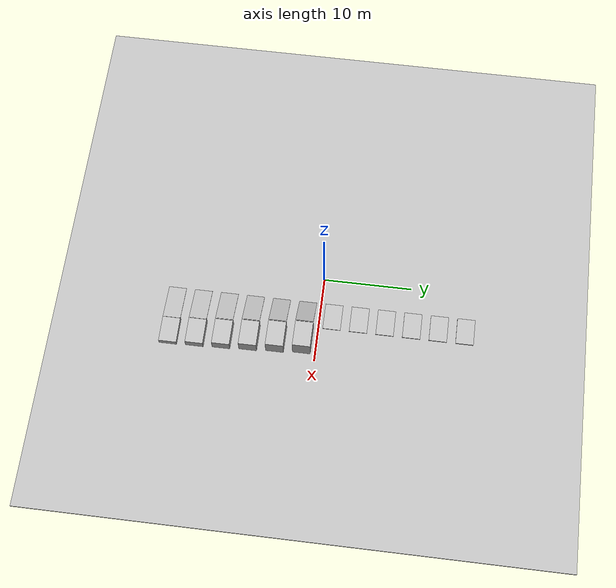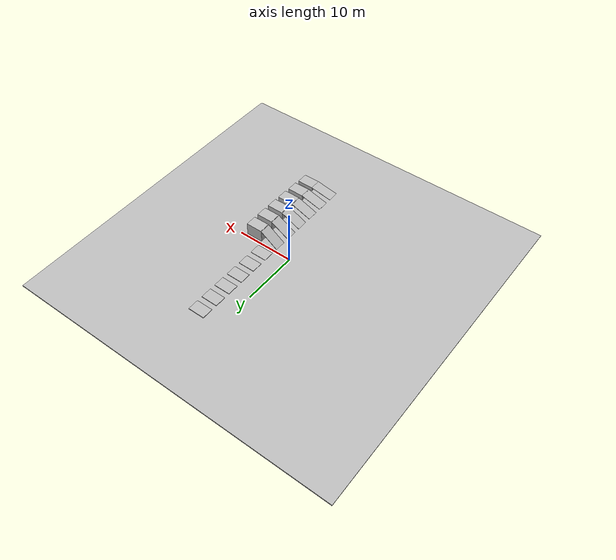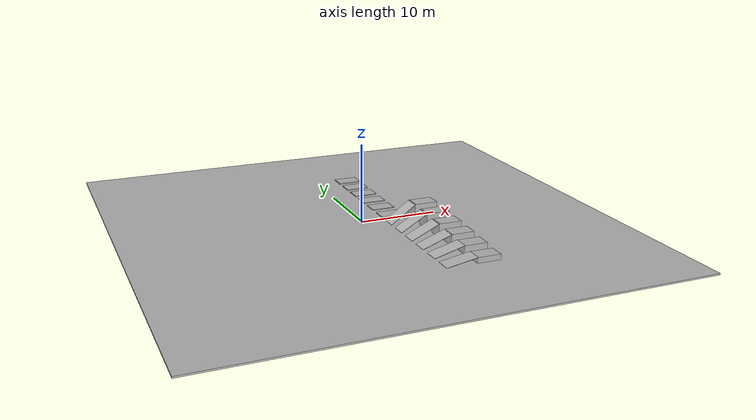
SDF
<?xml version="1.0"?>
<!-- GENERATED by make_limits_world.py (experiment X-A1, docs/work-docs/nav/step11_terrain_classification.md) -->
<sdf version="1.6">
  <world name="ugv_limits">
    <physics name="4ms" type="ignored"><max_step_size>0.004</max_step_size><real_time_factor>1.0</real_time_factor></physics>
    <plugin filename="ignition-gazebo-physics-system" name="gz::sim::systems::Physics"/>
    <plugin filename="ignition-gazebo-scene-broadcaster-system" name="gz::sim::systems::SceneBroadcaster"/>
    <plugin filename="ignition-gazebo-user-commands-system" name="gz::sim::systems::UserCommands"/>
    <plugin filename="ignition-gazebo-sensors-system" name="gz::sim::systems::Sensors"><render_engine>ogre2</render_engine></plugin>
    <scene><ambient>0.6 0.6 0.6 1</ambient><background>0.8 0.85 0.9 1</background></scene>
    <light type="directional" name="sun"><cast_shadows>false</cast_shadows><pose>0 0 10 0 0 0</pose><diffuse>0.9 0.9 0.9 1</diffuse><direction>-0.5 0.3 -1</direction></light>
    <model name="ground"><static>true</static><link name="l">
      <collision name="c"><geometry><box><size>60 60 0.2</size></box></geometry></collision>
      <visual name="v"><geometry><box><size>60 60 0.2</size></box></geometry></visual>
      <pose>0 0 -0.1 0 0 0</pose></link></model>
    <model name="ramp_10"><static>true</static><pose>4.9696 -16.5 0.3473 0 -0.17453 0</pose><link name="l"><collision name="c"><geometry><box><size>4.0 2.0 0.05</size></box></geometry></collision><visual name="v"><geometry><box><size>4.0 2.0 0.05</size></box></geometry></visual></link></model>
    <model name="top_10"><static>true</static><pose>8.3392 -16.5 0.3223 0 0 0</pose><link name="l"><collision name="c"><geometry><box><size>3.0 2.0 0.7445927106677214</size></box></geometry></collision><visual name="v"><geometry><box><size>3.0 2.0 0.7445927106677214</size></box></geometry></visual></link></model>
    <model name="ramp_15"><static>true</static><pose>4.9319 -13.5 0.5176 0 -0.26180 0</pose><link name="l"><collision name="c"><geometry><box><size>4.0 2.0 0.05</size></box></geometry></collision><visual name="v"><geometry><box><size>4.0 2.0 0.05</size></box></geometry></visual></link></model>
    <model name="top_15"><static>true</static><pose>8.2637 -13.5 0.4926 0 0 0</pose><link name="l"><collision name="c"><geometry><box><size>3.0 2.0 1.085276180410083</size></box></geometry></collision><visual name="v"><geometry><box><size>3.0 2.0 1.085276180410083</size></box></geometry></visual></link></model>
    <model name="ramp_20"><static>true</static><pose>4.8794 -10.5 0.6840 0 -0.34907 0</pose><link name="l"><collision name="c"><geometry><box><size>4.0 2.0 0.05</size></box></geometry></collision><visual name="v"><geometry><box><size>4.0 2.0 0.05</size></box></geometry></visual></link></model>
    <model name="top_20"><static>true</static><pose>8.1588 -10.5 0.6590 0 0 0</pose><link name="l"><collision name="c"><geometry><box><size>3.0 2.0 1.418080573302675</size></box></geometry></collision><visual name="v"><geometry><box><size>3.0 2.0 1.418080573302675</size></box></geometry></visual></link></model>
    <model name="ramp_25"><static>true</static><pose>4.8126 -7.5 0.8452 0 -0.43633 0</pose><link name="l"><collision name="c"><geometry><box><size>4.0 2.0 0.05</size></box></geometry></collision><visual name="v"><geometry><box><size>4.0 2.0 0.05</size></box></geometry></visual></link></model>
    <model name="top_25"><static>true</static><pose>8.0252 -7.5 0.8202 0 0 0</pose><link name="l"><collision name="c"><geometry><box><size>3.0 2.0 1.7404730469627978</size></box></geometry></collision><visual name="v"><geometry><box><size>3.0 2.0 1.7404730469627978</size></box></geometry></visual></link></model>
    <model name="ramp_30"><static>true</static><pose>4.7321 -4.5 1.0000 0 -0.52360 0</pose><link name="l"><collision name="c"><geometry><box><size>4.0 2.0 0.05</size></box></geometry></collision><visual name="v"><geometry><box><size>4.0 2.0 0.05</size></box></geometry></visual></link></model>
    <model name="top_30"><static>true</static><pose>7.8641 -4.5 0.9750 0 0 0</pose><link name="l"><collision name="c"><geometry><box><size>3.0 2.0 2.05</size></box></geometry></collision><visual name="v"><geometry><box><size>3.0 2.0 2.05</size></box></geometry></visual></link></model>
    <model name="ramp_35"><static>true</static><pose>4.6383 -1.5 1.1472 0 -0.61087 0</pose><link name="l"><collision name="c"><geometry><box><size>4.0 2.0 0.05</size></box></geometry></collision><visual name="v"><geometry><box><size>4.0 2.0 0.05</size></box></geometry></visual></link></model>
    <model name="top_35"><static>true</static><pose>7.6766 -1.5 1.1222 0 0 0</pose><link name="l"><collision name="c"><geometry><box><size>3.0 2.0 2.344305745404184</size></box></geometry></collision><visual name="v"><geometry><box><size>3.0 2.0 2.344305745404184</size></box></geometry></visual></link></model>
    <model name="step_8cm"><static>true</static><pose>4.5 1.5 0.0400 0 0 0</pose><link name="l"><collision name="c"><geometry><box><size>3.0 2.0 0.08</size></box></geometry></collision><visual name="v"><geometry><box><size>3.0 2.0 0.08</size></box></geometry></visual></link></model>
    <model name="step_9cm"><static>true</static><pose>4.5 4.5 0.0450 0 0 0</pose><link name="l"><collision name="c"><geometry><box><size>3.0 2.0 0.09</size></box></geometry></collision><visual name="v"><geometry><box><size>3.0 2.0 0.09</size></box></geometry></visual></link></model>
    <model name="step_10cm"><static>true</static><pose>4.5 7.5 0.0500 0 0 0</pose><link name="l"><collision name="c"><geometry><box><size>3.0 2.0 0.1</size></box></geometry></collision><visual name="v"><geometry><box><size>3.0 2.0 0.1</size></box></geometry></visual></link></model>
    <model name="step_11cm"><static>true</static><pose>4.5 10.5 0.0550 0 0 0</pose><link name="l"><collision name="c"><geometry><box><size>3.0 2.0 0.11</size></box></geometry></collision><visual name="v"><geometry><box><size>3.0 2.0 0.11</size></box></geometry></visual></link></model>
    <model name="step_12cm"><static>true</static><pose>4.5 13.5 0.0600 0 0 0</pose><link name="l"><collision name="c"><geometry><box><size>3.0 2.0 0.12</size></box></geometry></collision><visual name="v"><geometry><box><size>3.0 2.0 0.12</size></box></geometry></visual></link></model>
    <model name="step_14cm"><static>true</static><pose>4.5 16.5 0.0700 0 0 0</pose><link name="l"><collision name="c"><geometry><box><size>3.0 2.0 0.14</size></box></geometry></collision><visual name="v"><geometry><box><size>3.0 2.0 0.14</size></box></geometry></visual></link></model>
    <include><name>nav_ugv</name><uri>model://nav_ugv</uri><pose>0 0 0 0 0 0</pose>
      <plugin filename="ignition-gazebo-diff-drive-system" name="gz::sim::systems::DiffDrive">
        <left_joint>left_wheel_joint</left_joint><left_joint>rear_left_wheel_joint</left_joint>
        <right_joint>right_wheel_joint</right_joint><right_joint>rear_right_wheel_joint</right_joint>
        <wheel_separation>0.49</wheel_separation><wheel_radius>0.098</wheel_radius>
        <topic>cmd_vel</topic><odom_topic>odometry</odom_topic>
        <frame_id>nav_ugv/wheel_odom</frame_id><child_frame_id>nav_ugv/wheel_odom_base</child_frame_id>
      </plugin>
      <plugin filename="ignition-gazebo-odometry-publisher-system" name="gz::sim::systems::OdometryPublisher">
        <dimensions>3</dimensions><odom_frame>nav_ugv/odom</odom_frame><robot_base_frame>nav_ugv/base_link</robot_base_frame><odom_publish_frequency>30</odom_publish_frequency>
      </plugin>
    </include>
  </world>
</sdf>

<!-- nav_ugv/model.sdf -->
<sdf version="1.6">
  <model name="nav_ugv">
    <link name="base_link">
      <!-- Chassis center sits at wheel_radius + chassis_z/2 = 0.05 + 0.075
           = 0.125m above the ground - just tall enough that the box's
           bottom face clears the wheels' contact patch. -->
      <pose>0 0 0.125 0 0 0</pose>
      <inertial>
        <mass>1.5</mass>
        <inertia>
          <ixx>0.0138</ixx>
          <ixy>0</ixy>
          <ixz>0</ixz>
          <iyy>0.0138</iyy>
          <iyz>0</iyz>
          <izz>0.0225</izz>
        </inertia>
      </inertial>
      <visual name="chassis_visual">
        <geometry>
          <box>
            <size>0.3 0.3 0.15</size>
          </box>
        </geometry>
        <material>
          <ambient>1 1 1 1</ambient>
          <diffuse>1 1 1 1</diffuse>
          <specular>0.3 0.3 0.3 1</specular>
        </material>
      </visual>
      <collision name="chassis_collision">
        <geometry>
          <box>
            <size>0.3 0.3 0.15</size>
          </box>
        </geometry>
      </collision>

      <visual name="lidar_visual">
        <pose>0.1 0 0.095 0 0 0</pose>
        <geometry>
          <cylinder>
            <radius>0.05</radius>
            <length>0.04</length>
          </cylinder>
        </geometry>
        <material>
          <ambient>0.6 0 0 1</ambient>
          <diffuse>0.6 0 0 1</diffuse>
        </material>
      </visual>
      <sensor name="lidar" type="gpu_lidar">
        <pose>0.1 0 0.095 0 0 0</pose>
        <topic>nav_ugv/scan</topic>
        <update_rate>10</update_rate>
        <always_on>true</always_on>
        <visualize>false</visualize>
        <lidar>
          <scan>
            <horizontal>
              <samples>360</samples>
              <resolution>1</resolution>
              <min_angle>-3.14159</min_angle>
              <max_angle>3.14159</max_angle>
            </horizontal>
            <vertical>
              <samples>1</samples>
              <resolution>1</resolution>
              <min_angle>0</min_angle>
              <max_angle>0</max_angle>
            </vertical>
          </scan>
          <range>
            <min>0.3</min>
            <max>12.0</max>
            <resolution>0.01</resolution>
          </range>
        </lidar>
      </sensor>
    </link>

    <link name="left_wheel">
      <pose>0 0.2 0.05 -1.5708 0 0</pose>
      <inertial>
        <mass>0.2</mass>
        <inertia>
          <ixx>0.00013</ixx>
          <ixy>0</ixy>
          <ixz>0</ixz>
          <iyy>0.00013</iyy>
          <iyz>0</iyz>
          <izz>0.00025</izz>
        </inertia>
      </inertial>
      <visual name="visual">
        <geometry>
          <cylinder>
            <radius>0.05</radius>
            <length>0.04</length>
          </cylinder>
        </geometry>
        <material>
          <ambient>0.2 0.2 1 1</ambient>
          <diffuse>0.2 0.2 1 1</diffuse>
        </material>
      </visual>
      <collision name="collision">
        <geometry>
          <sphere>
            <radius>0.05</radius>
          </sphere>
        </geometry>
      </collision>
    </link>

    <link name="right_wheel">
      <pose>0 -0.2 0.05 -1.5708 0 0</pose>
      <inertial>
        <mass>0.2</mass>
        <inertia>
          <ixx>0.00013</ixx>
          <ixy>0</ixy>
          <ixz>0</ixz>
          <iyy>0.00013</iyy>
          <iyz>0</iyz>
          <izz>0.00025</izz>
        </inertia>
      </inertial>
      <visual name="visual">
        <geometry>
          <cylinder>
            <radius>0.05</radius>
            <length>0.04</length>
          </cylinder>
        </geometry>
        <material>
          <ambient>0.2 0.2 1 1</ambient>
          <diffuse>0.2 0.2 1 1</diffuse>
        </material>
      </visual>
      <collision name="collision">
        <geometry>
          <sphere>
            <radius>0.05</radius>
          </sphere>
        </geometry>
      </collision>
    </link>

    <link name="caster_wheel">
      <pose>-0.13 0 0.03 0 0 0</pose>
      <inertial>
        <mass>0.1</mass>
        <inertia>
          <ixx>0.000036</ixx>
          <ixy>0</ixy>
          <ixz>0</ixz>
          <iyy>0.000036</iyy>
          <iyz>0</iyz>
          <izz>0.000036</izz>
        </inertia>
      </inertial>
      <visual name="visual">
        <geometry>
          <sphere>
            <radius>0.03</radius>
          </sphere>
        </geometry>
        <material>
          <ambient>0.1 0.1 0.1 1</ambient>
          <diffuse>0.1 0.1 0.1 1</diffuse>
        </material>
      </visual>
      <collision name="collision">
        <geometry>
          <sphere>
            <radius>0.03</radius>
          </sphere>
        </geometry>
        <surface>
          <friction>
            <ode>
              <mu>0.001</mu>
              <mu2>0.001</mu2>
            </ode>
          </friction>
        </surface>
      </collision>
    </link>

    <link name="front_caster_wheel">
      <pose>0.13 0 0.03 0 0 0</pose>
      <inertial>
        <mass>0.1</mass>
        <inertia>
          <ixx>0.000036</ixx>
          <ixy>0</ixy>
          <ixz>0</ixz>
          <iyy>0.000036</iyy>
          <iyz>0</iyz>
          <izz>0.000036</izz>
        </inertia>
      </inertial>
      <visual name="visual">
        <geometry>
          <sphere>
            <radius>0.03</radius>
          </sphere>
        </geometry>
        <material>
          <ambient>0.1 0.1 0.1 1</ambient>
          <diffuse>0.1 0.1 0.1 1</diffuse>
        </material>
      </visual>
      <collision name="collision">
        <geometry>
          <sphere>
            <radius>0.03</radius>
          </sphere>
        </geometry>
        <surface>
          <friction>
            <ode>
              <mu>0.001</mu>
              <mu2>0.001</mu2>
            </ode>
          </friction>
        </surface>
      </collision>
    </link>

    <joint name="left_wheel_joint" type="revolute">
      <parent>base_link</parent>
      <child>left_wheel</child>
      <axis>
        <xyz>0 0 1</xyz>
        <limit>
          <lower>-1.79769e+308</lower>
          <upper>1.79769e+308</upper>
        </limit>
      </axis>
    </joint>

    <joint name="right_wheel_joint" type="revolute">
      <parent>base_link</parent>
      <child>right_wheel</child>
      <axis>
        <xyz>0 0 1</xyz>
        <limit>
          <lower>-1.79769e+308</lower>
          <upper>1.79769e+308</upper>
        </limit>
      </axis>
    </joint>

    <joint name="front_caster_wheel_joint" type="ball">
      <parent>base_link</parent>
      <child>front_caster_wheel</child>
    </joint>

    <joint name="caster_wheel_joint" type="ball">
      <parent>base_link</parent>
      <child>caster_wheel</child>
    </joint>

    <link name="front_camera_link">
      <pose>0.18 0 0.05 0 0.6 0</pose>
      <visual name="front_camera_visual">
        <geometry>
          <box>
            <size>0.03 0.05 0.03</size>
          </box>
        </geometry>
        <material>
          <ambient>0.05 0.05 0.05 1</ambient>
          <diffuse>0.05 0.05 0.05 1</diffuse>
        </material>
      </visual>
      <sensor name="front_camera" type="rgbd_camera">
        <pose>0 0 0 0 0 0</pose>
        <always_on>true</always_on>
        <update_rate>10</update_rate>
        <visualize>true</visualize>
        <topic>nav_ugv/front_camera</topic>
        <camera>
          <horizontal_fov>1.047</horizontal_fov>
          <image>
            <width>320</width>
            <height>240</height>
          </image>
          <clip>
            <near>0.1</near>
            <far>8.0</far>
          </clip>
        </camera>
      </sensor>
    </link>
    <joint name="front_camera_joint" type="fixed">
      <parent>base_link</parent>
      <child>front_camera_link</child>
    </joint>

    <link name="video_camera_link">
      <pose>0.1 0 0.22 0 0.15 0</pose>
      <inertial>
        <mass>0.02</mass>
        <inertia>
          <ixx>0.000005</ixx>
          <iyy>0.000005</iyy>
          <izz>0.000005</izz>
          <ixy>0</ixy>
          <ixz>0</ixz>
          <iyz>0</iyz>
        </inertia>
      </inertial>
      <visual name="video_camera_visual">
        <geometry>
          <box>
            <size>0.03 0.05 0.03</size>
          </box>
        </geometry>
        <material>
          <ambient>0.05 0.05 0.05 1</ambient>
          <diffuse>0.05 0.05 0.05 1</diffuse>
        </material>
      </visual>
      <sensor name="video_camera" type="camera">
        <pose>0 0 0 0 0 0</pose>
        <always_on>true</always_on>
        <update_rate>10</update_rate>
        <visualize>true</visualize>
        <topic>nav_ugv/video_camera</topic>
        <camera>
          <horizontal_fov>1.3</horizontal_fov>
          <image>
            <width>320</width>
            <height>240</height>
          </image>
          <clip>
            <near>0.1</near>
            <far>15.0</far>
          </clip>
        </camera>
      </sensor>
    </link>
    <joint name="video_camera_joint" type="fixed">
      <parent>base_link</parent>
      <child>video_camera_link</child>
    </joint>
  </model>
</sdf>
